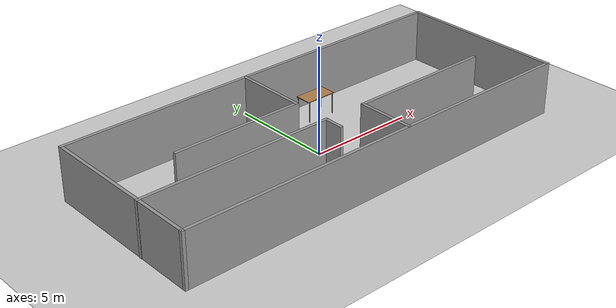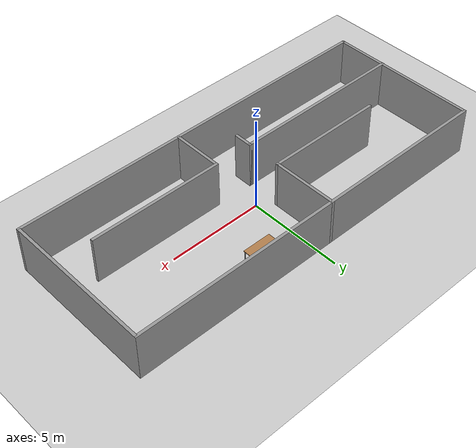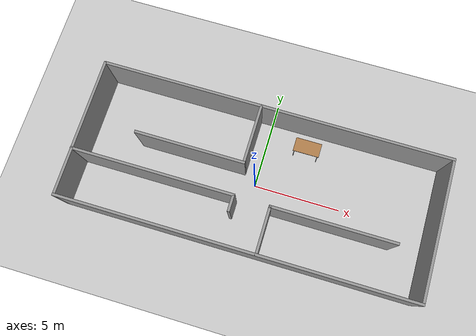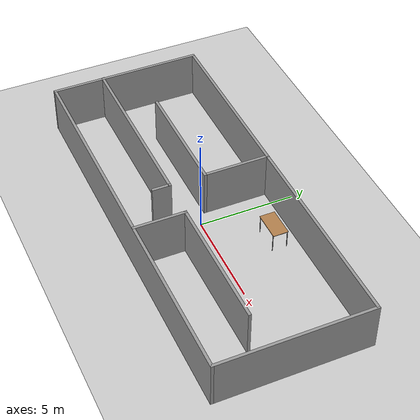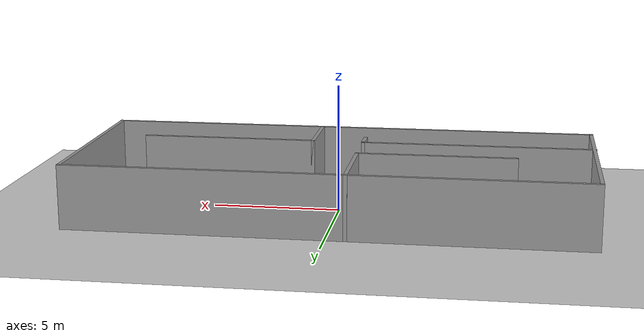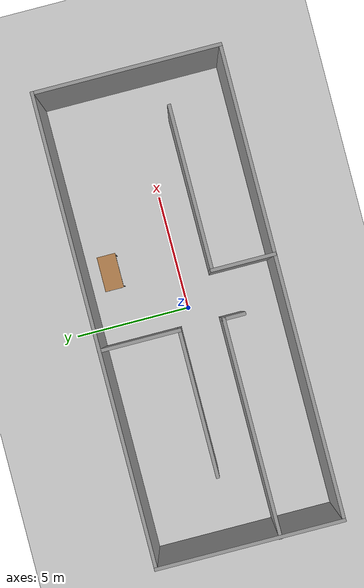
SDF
<sdf version="1.7">
 <world name="default">
  <light name="sun" type="directional">
   <pose>0 0 10 0 -0 0</pose>
   <diffuse>0.8 0.8 0.8 1</diffuse>
   <specular>0.2 0.2 0.2 1</specular>
   <attenuation>
    <range>1000</range>
    <constant>0.9</constant>
    <linear>0.01</linear>
    <quadratic>0.001</quadratic>
   </attenuation>
   <direction>-0.5 0.1 -0.9</direction>
   <spot><inner_angle>0</inner_angle><outer_angle>0</outer_angle><falloff>0</falloff></spot>
  </light>
  <model name="ground_plane">
   <static>1</static>
   <link name="link">
    <collision name="collision">
     <geometry><plane><normal>0 0 1</normal><size>100 100</size></plane></geometry>
     <surface><friction><ode><mu>100</mu><mu2>50</mu2></ode></friction></surface>
    </collision>
    <visual name="visual">
     <cast_shadows>0</cast_shadows>
     <geometry><plane><normal>0 0 1</normal><size>100 100</size></plane></geometry>
     <material>
      <script><uri>file://media/materials/scripts/gazebo.material</uri><name>Gazebo/Grey</name></script>
     </material>
    </visual>
   </link>
  </model>
  <gravity>0 0 -9.8</gravity>
  <magnetic_field>6e-06 2.3e-05 -4.2e-05</magnetic_field>
  <atmosphere type="adiabatic"/>
  <physics type="ode">
   <max_step_size>0.001</max_step_size>
   <real_time_factor>1</real_time_factor>
   <real_time_update_rate>1000</real_time_update_rate>
  </physics>
  <scene><ambient>0.4 0.4 0.4 1</ambient><background>0.7 0.7 0.7 1</background><shadows>1</shadows></scene>
  <audio><device>default</device></audio>
  <spherical_coordinates>
   <surface_model>EARTH_WGS84</surface_model>
   <latitude_deg>0</latitude_deg>
   <longitude_deg>0</longitude_deg>
   <elevation>0</elevation>
   <heading_deg>0</heading_deg>
  </spherical_coordinates>
  <model name="bigger_room">
   <pose>0.04614 -0.006182 0 0 -0 0</pose>
   <link name="Wall_0">
    <collision name="Wall_0_Collision">
     <geometry><box><size>8 0.15 2.5</size></box></geometry>
     <pose>0 0 1.25 0 -0 0</pose>
    </collision>
    <visual name="Wall_0_Visual">
     <pose>0 0 1.25 0 -0 0</pose>
     <geometry><box><size>8 0.15 2.5</size></box></geometry>
     <material>
      <script><uri>file://media/materials/scripts/gazebo.material</uri><name>Gazebo/Grey</name></script>
      <ambient>1 1 1 1</ambient>
     </material>
    </visual>
    <pose>-9.91757 -0.000951 0 0 -0 1.5708</pose>
   </link>
   <link name="Wall_1">
    <collision name="Wall_1_Collision">
     <geometry><box><size>20 0.15 2.5</size></box></geometry>
     <pose>0 0 1.25 0 -0 0</pose>
    </collision>
    <visual name="Wall_1_Visual">
     <pose>0 0 1.25 0 -0 0</pose>
     <geometry><box><size>20 0.15 2.5</size></box></geometry>
     <material>
      <script><uri>file://media/materials/scripts/gazebo.material</uri><name>Gazebo/Grey</name></script>
      <ambient>1 1 1 1</ambient>
     </material>
    </visual>
    <pose>0.007425 3.92405 0 0 -0 0</pose>
   </link>
   <link name="Wall_11">
    <collision name="Wall_11_Collision">
     <geometry><box><size>2.75 0.15 2.5</size></box></geometry>
     <pose>0 0 1.25 0 -0 0</pose>
    </collision>
    <visual name="Wall_11_Visual">
     <pose>0 0 1.25 0 -0 0</pose>
     <geometry><box><size>2.75 0.15 2.5</size></box></geometry>
     <material>
      <script><uri>file://media/materials/scripts/gazebo.material</uri><name>Gazebo/Grey</name></script>
      <ambient>1 1 1 1</ambient>
     </material>
    </visual>
    <pose>1.19125 -2.6096 0 0 -0 1.5708</pose>
   </link>
   <link name="Wall_12">
    <collision name="Wall_12_Collision">
     <geometry><box><size>7 0.15 2.5</size></box></geometry>
     <pose>0 0 1.25 0 -0 0</pose>
    </collision>
    <visual name="Wall_12_Visual">
     <pose>0 0 1.25 0 -0 0</pose>
     <geometry><box><size>7 0.15 2.5</size></box></geometry>
     <material>
      <script><uri>file://media/materials/scripts/gazebo.material</uri><name>Gazebo/Grey</name></script>
      <ambient>1 1 1 1</ambient>
     </material>
    </visual>
    <pose>4.61625 -1.3096 0 0 -0 0</pose>
   </link>
   <link name="Wall_2">
    <collision name="Wall_2_Collision">
     <geometry><box><size>8 0.15 2.5</size></box></geometry>
     <pose>0 0 1.25 0 -0 0</pose>
    </collision>
    <visual name="Wall_2_Visual">
     <pose>0 0 1.25 0 -0 0</pose>
     <geometry><box><size>8 0.15 2.5</size></box></geometry>
     <material>
      <script><uri>file://media/materials/scripts/gazebo.material</uri><name>Gazebo/Grey</name></script>
      <ambient>1 1 1 1</ambient>
     </material>
    </visual>
    <pose>9.93243 -0.000951 0 0 -0 -1.5708</pose>
   </link>
   <link name="Wall_3">
    <collision name="Wall_3_Collision">
     <geometry><box><size>20 0.15 2.5</size></box></geometry>
     <pose>0 0 1.25 0 -0 0</pose>
    </collision>
    <visual name="Wall_3_Visual">
     <pose>0 0 1.25 0 -0 0</pose>
     <geometry><box><size>20 0.15 2.5</size></box></geometry>
     <material>
      <script><uri>file://media/materials/scripts/gazebo.material</uri><name>Gazebo/Grey</name></script>
      <ambient>1 1 1 1</ambient>
     </material>
    </visual>
    <pose>0.007425 -3.92595 0 0 -0 3.14159</pose>
   </link>
   <link name="Wall_5">
    <collision name="Wall_5_Collision">
     <geometry><box><size>3.5 0.15 2.5</size></box></geometry>
     <pose>0 0 1.25 0 -0 0</pose>
    </collision>
    <visual name="Wall_5_Visual">
     <pose>0 0 1.25 0 -0 0</pose>
     <geometry><box><size>3.5 0.15 2.5</size></box></geometry>
     <material>
      <script><uri>file://media/materials/scripts/gazebo.material</uri><name>Gazebo/Grey</name></script>
      <ambient>1 1 1 1</ambient>
     </material>
    </visual>
    <pose>-0.820103 2.25095 0 0 -0 -1.5708</pose>
   </link>
   <link name="Wall_6">
    <collision name="Wall_6_Collision">
     <geometry><box><size>6.25 0.15 2.5</size></box></geometry>
     <pose>0 0 1.25 0 -0 0</pose>
    </collision>
    <visual name="Wall_6_Visual">
     <pose>0 0 1.25 0 -0 0</pose>
     <geometry><box><size>6.25 0.15 2.5</size></box></geometry>
     <material>
      <script><uri>file://media/materials/scripts/gazebo.material</uri><name>Gazebo/Grey</name></script>
      <ambient>1 1 1 1</ambient>
     </material>
    </visual>
    <pose>-3.8701 0.575952 0 0 -0 3.14159</pose>
   </link>
   <link name="Wall_8">
    <collision name="Wall_8_Collision">
     <geometry><box><size>9.25 0.15 2.5</size></box></geometry>
     <pose>0 0 1.25 0 -0 0</pose>
    </collision>
    <visual name="Wall_8_Visual">
     <pose>0 0 1.25 0 -0 0</pose>
     <geometry><box><size>9.25 0.15 2.5</size></box></geometry>
     <material>
      <script><uri>file://media/materials/scripts/gazebo.material</uri><name>Gazebo/Grey</name></script>
      <ambient>1 1 1 1</ambient>
     </material>
    </visual>
    <pose>-5.38243 -1.2686 0 0 -0 0</pose>
   </link>
   <link name="Wall_9">
    <collision name="Wall_9_Collision">
     <geometry><box><size>1 0.15 2.5</size></box></geometry>
     <pose>0 0 1.25 0 -0 0</pose>
    </collision>
    <visual name="Wall_9_Visual">
     <pose>0 0 1.25 0 -0 0</pose>
     <geometry><box><size>1 0.15 2.5</size></box></geometry>
     <material>
      <script><uri>file://media/materials/scripts/gazebo.material</uri><name>Gazebo/Grey</name></script>
      <ambient>1 1 1 1</ambient>
     </material>
    </visual>
    <pose>-0.832426 -1.6936 0 0 -0 -1.5708</pose>
   </link>
   <static>1</static>
  </model>
  <model name="table">
   <static>1</static>
   <link name="link">
    <collision name="surface">
     <pose>0 0 1 0 -0 0</pose>
     <geometry><box><size>1.5 0.8 0.03</size></box></geometry>
     <surface><friction><ode><mu>0.6</mu><mu2>0.6</mu2></ode></friction></surface>
    </collision>
    <visual name="visual1">
     <pose>0 0 1 0 -0 0</pose>
     <geometry><box><size>1.5 0.8 0.03</size></box></geometry>
     <material>
      <script><uri>file://media/materials/scripts/gazebo.material</uri><name>Gazebo/Wood</name></script>
     </material>
    </visual>
    <collision name="front_left_leg">
     <pose>0.68 0.38 0.5 0 -0 0</pose>
     <geometry><cylinder><radius>0.02</radius><length>1</length></cylinder></geometry>
    </collision>
    <visual name="front_left_leg">
     <pose>0.68 0.38 0.5 0 -0 0</pose>
     <geometry><cylinder><radius>0.02</radius><length>1</length></cylinder></geometry>
     <material>
      <script><uri>file://media/materials/scripts/gazebo.material</uri><name>Gazebo/Grey</name></script>
     </material>
    </visual>
    <collision name="front_right_leg">
     <pose>0.68 -0.38 0.5 0 -0 0</pose>
     <geometry><cylinder><radius>0.02</radius><length>1</length></cylinder></geometry>
    </collision>
    <visual name="front_right_leg">
     <pose>0.68 -0.38 0.5 0 -0 0</pose>
     <geometry><cylinder><radius>0.02</radius><length>1</length></cylinder></geometry>
     <material>
      <script><uri>file://media/materials/scripts/gazebo.material</uri><name>Gazebo/Grey</name></script>
     </material>
    </visual>
    <collision name="back_right_leg">
     <pose>-0.68 -0.38 0.5 0 -0 0</pose>
     <geometry><cylinder><radius>0.02</radius><length>1</length></cylinder></geometry>
    </collision>
    <visual name="back_right_leg">
     <pose>-0.68 -0.38 0.5 0 -0 0</pose>
     <geometry><cylinder><radius>0.02</radius><length>1</length></cylinder></geometry>
     <material>
      <script><uri>file://media/materials/scripts/gazebo.material</uri><name>Gazebo/Grey</name></script>
     </material>
    </visual>
    <collision name="back_left_leg">
     <pose>-0.68 0.38 0.5 0 -0 0</pose>
     <geometry><cylinder><radius>0.02</radius><length>1</length></cylinder></geometry>
    </collision>
    <visual name="back_left_leg">
     <pose>-0.68 0.38 0.5 0 -0 0</pose>
     <geometry><cylinder><radius>0.02</radius><length>1</length></cylinder></geometry>
     <material>
      <script><uri>file://media/materials/scripts/gazebo.material</uri><name>Gazebo/Grey</name></script>
     </material>
    </visual>
   </link>
   <pose>2.29721 2.8208 0 0 -0 0</pose>
  </model>
 </world>
</sdf>
